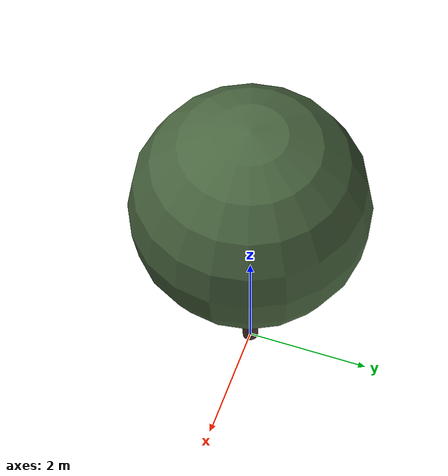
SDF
<?xml version="1.0" ?>
<sdf version="1.10">
  <model name="chene_vert_11">
    <static>true</static>

    <!-- Tronc -->
    <link name="trunk">
      <pose>0 0 1.5153831242223779 0 0 0</pose>
      <visual name="trunk_visual">
        <geometry>
          <cylinder>
            <radius>0.12570518817094753</radius>
            <length>3.0307662484447557</length>
          </cylinder>
        </geometry>
        <material>
          <ambient>0.29 0.22 0.16 1</ambient>
          <diffuse>0.29 0.22 0.16 1</diffuse>
          <specular>0.1 0.1 0.1 1</specular>
        </material>
      </visual>
      <collision name="trunk_collision">
        <geometry>
          <cylinder>
            <radius>0.12570518817094753</radius>
            <length>3.0307662484447557</length>
          </cylinder>
        </geometry>
      </collision>
    </link>

    <!-- Feuillage -->
    <link name="crown">
      <pose>0 0 3.6034296570903925 0 0 0</pose>
      <visual name="crown_visual">
        <geometry>
          <sphere>
              <radius>1.9088780288187899</radius>
            </sphere>
        </geometry>
        <material>
          <ambient>0.29 0.40 0.25 1</ambient>
          <diffuse>0.29 0.40 0.25 1</diffuse>
          <specular>0.1 0.1 0.1 1</specular>
        </material>
      </visual>
      <collision name="crown_collision">
        <geometry>
          <sphere>
            <radius>1.527102423055032</radius>
          </sphere>
        </geometry>
      </collision>
    </link>

    <!-- Joint tronc-feuillage -->
    <joint name="trunk_crown_joint" type="fixed">
      <parent>trunk</parent>
      <child>crown</child>
    </joint>

  </model>
</sdf>
